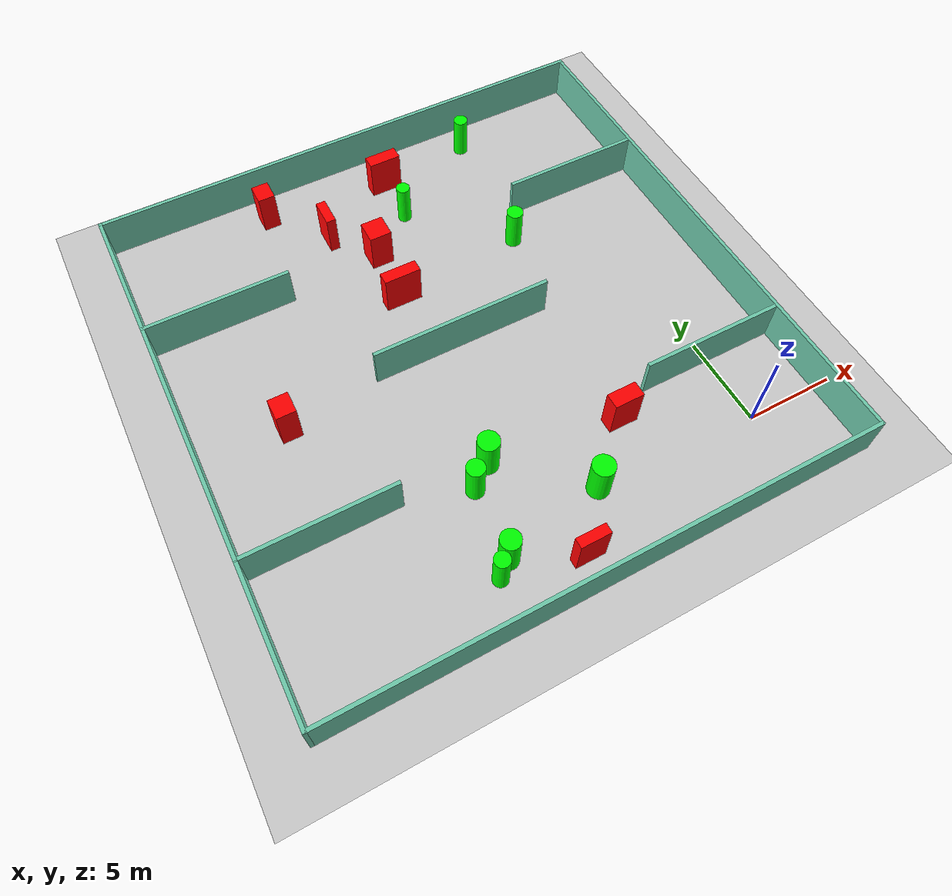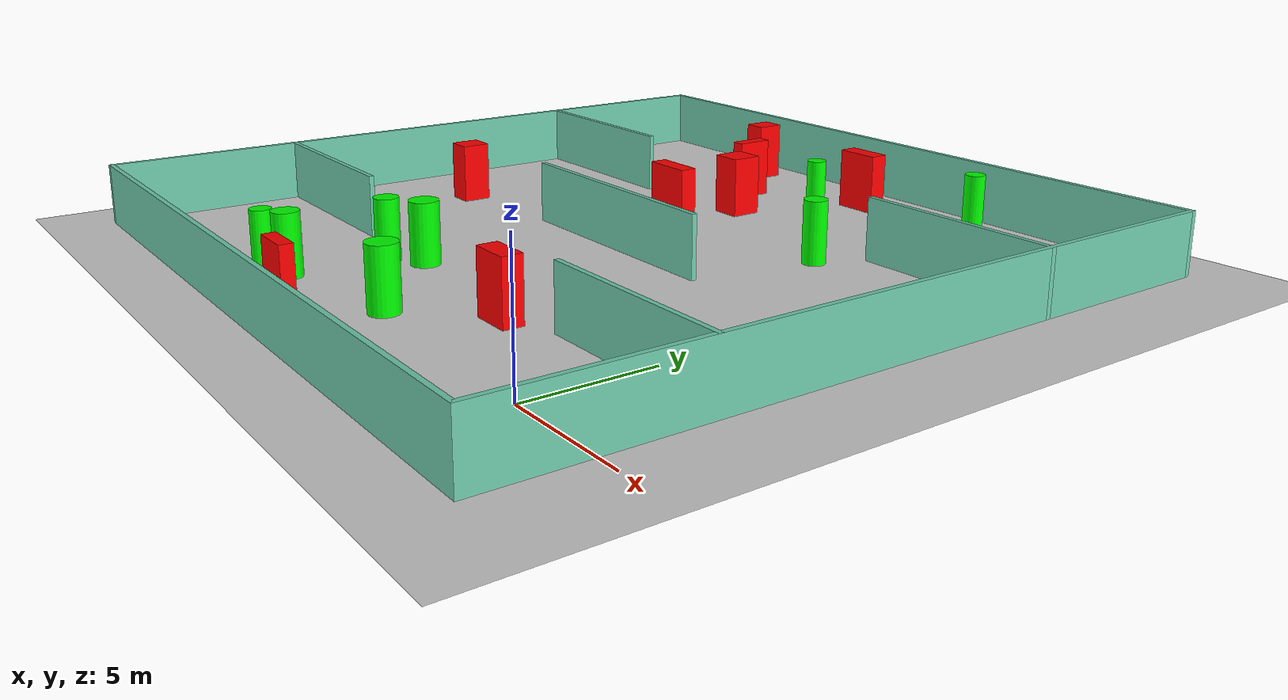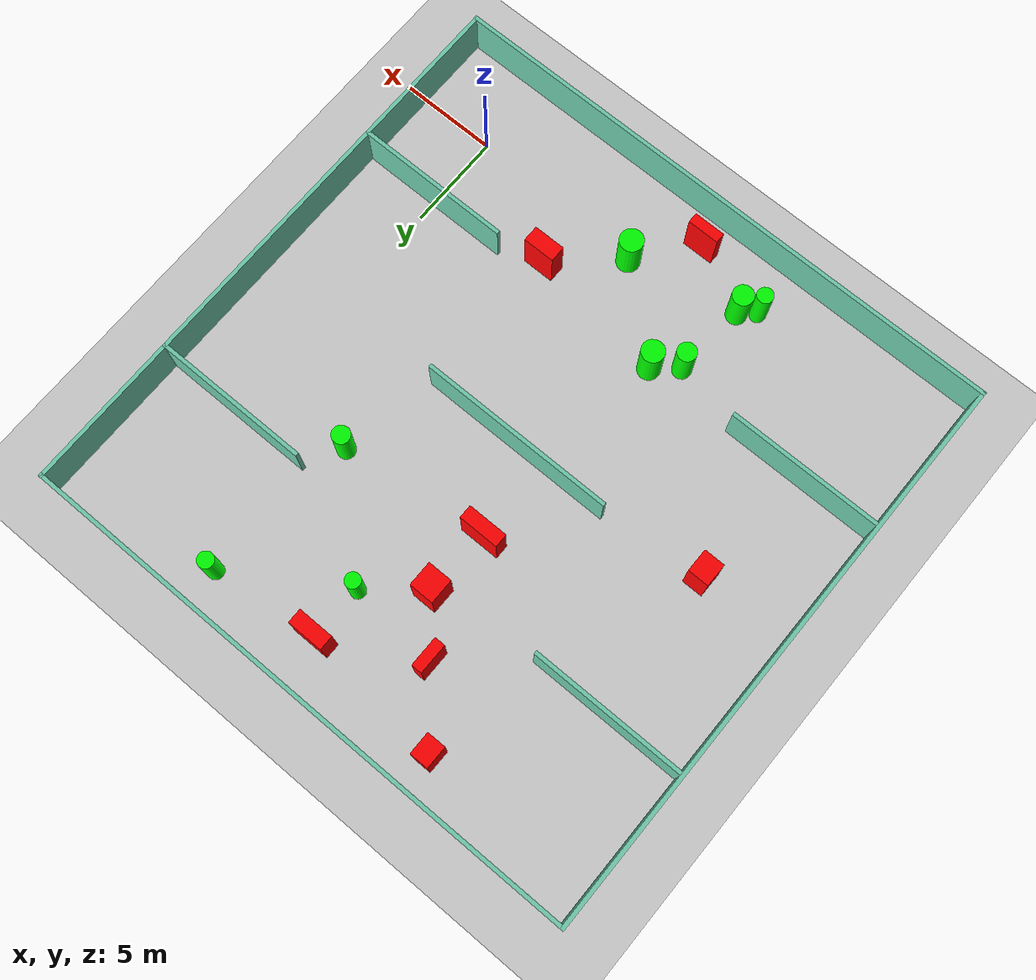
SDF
<sdf version="1.7">
 <world name="default">
  <light name="sun" type="directional">
   <pose>0 0 10 0 -0 0</pose>
   <diffuse>0.8 0.8 0.8 1</diffuse>
   <specular>0.2 0.2 0.2 1</specular>
   <attenuation>
    <range>1000</range>
    <constant>0.9</constant>
    <linear>0.01</linear>
    <quadratic>0.001</quadratic>
   </attenuation>
   <direction>-0.5 0.1 -0.9</direction>
   <spot><inner_angle>0</inner_angle><outer_angle>0</outer_angle><falloff>0</falloff></spot>
  </light>
  <model name="ground_plane">
   <static>1</static>
   <link name="link">
    <collision name="collision">
     <geometry><plane><normal>0 0 1</normal><size>100 100</size></plane></geometry>
     <surface>
      <contact><collide_bitmask>65535</collide_bitmask></contact>
      <friction><ode><mu>100</mu><mu2>50</mu2></ode></friction>
     </surface>
    </collision>
    <visual name="visual">
     <cast_shadows>0</cast_shadows>
     <geometry><plane><normal>0 0 1</normal><size>100 100</size></plane></geometry>
     <material>
      <script><uri>file://media/materials/scripts/gazebo.material</uri><name>Gazebo/Grey</name></script>
     </material>
    </visual>
   </link>
  </model>
  <gravity>0 0 -9.8</gravity>
  <magnetic_field>6e-06 2.3e-05 -4.2e-05</magnetic_field>
  <atmosphere type="adiabatic"/>
  <physics type="ode">
   <max_step_size>0.001</max_step_size>
   <real_time_factor>1</real_time_factor>
   <real_time_update_rate>1000</real_time_update_rate>
  </physics>
  <scene><ambient>0.4 0.4 0.4 1</ambient><background>0.7 0.7 0.7 1</background><shadows>1</shadows></scene>
  <spherical_coordinates>
   <surface_model>EARTH_WGS84</surface_model>
   <latitude_deg>0</latitude_deg>
   <longitude_deg>0</longitude_deg>
   <elevation>0</elevation>
   <heading_deg>0</heading_deg>
  </spherical_coordinates>
  <model name="my_base_walls">
   <link name="Wall_10">
    <collision name="Wall_10_Collision">
     <geometry><box><size>8.2 0.2 2.5</size></box></geometry>
     <pose>0 0 1.25 0 -0 0</pose>
    </collision>
    <visual name="Wall_10_Visual">
     <pose>0 0 1.25 0 -0 0</pose>
     <geometry><box><size>8.2 0.2 2.5</size></box></geometry>
     <material>
      <script><uri>file://media/materials/scripts/gazebo.material</uri><name>Gazebo/Grey</name></script>
      <ambient>0.435294 0.796078 0.67451 1</ambient>
     </material>
     <meta><layer>0</layer></meta>
    </visual>
    <pose>-11 -7 0 0 -0 0</pose>
   </link>
   <link name="Wall_12">
    <collision name="Wall_12_Collision">
     <geometry><box><size>8.2 0.2 2.5</size></box></geometry>
     <pose>0 0 1.25 0 -0 0</pose>
    </collision>
    <visual name="Wall_12_Visual">
     <pose>0 0 1.25 0 -0 0</pose>
     <geometry><box><size>8.2 0.2 2.5</size></box></geometry>
     <material>
      <script><uri>file://media/materials/scripts/gazebo.material</uri><name>Gazebo/Grey</name></script>
      <ambient>0.435294 0.796078 0.67451 1</ambient>
     </material>
     <meta><layer>0</layer></meta>
    </visual>
    <pose>-11 7 0 0 -0 0</pose>
   </link>
   <link name="Wall_14">
    <collision name="Wall_14_Collision">
     <geometry><box><size>8.2 0.2 2.5</size></box></geometry>
     <pose>0 0 1.25 0 -0 0</pose>
    </collision>
    <visual name="Wall_14_Visual">
     <pose>0 0 1.25 0 -0 0</pose>
     <geometry><box><size>8.2 0.2 2.5</size></box></geometry>
     <material>
      <script><uri>file://media/materials/scripts/gazebo.material</uri><name>Gazebo/Grey</name></script>
      <ambient>0.435294 0.796078 0.67451 1</ambient>
     </material>
     <meta><layer>0</layer></meta>
    </visual>
    <pose>11 7 0 0 -0 3.14159</pose>
   </link>
   <link name="Wall_16">
    <collision name="Wall_16_Collision">
     <geometry><box><size>10.2 0.2 2.5</size></box></geometry>
     <pose>0 0 1.25 0 -0 0</pose>
    </collision>
    <visual name="Wall_16_Visual">
     <pose>0 0 1.25 0 -0 0</pose>
     <geometry><box><size>10.2 0.2 2.5</size></box></geometry>
     <material>
      <script><uri>file://media/materials/scripts/gazebo.material</uri><name>Gazebo/Grey</name></script>
      <ambient>0.435294 0.796078 0.67451 1</ambient>
     </material>
     <meta><layer>0</layer></meta>
    </visual>
    <pose>0 0 0 0 -0 3.14159</pose>
   </link>
   <link name="Wall_2">
    <collision name="Wall_2_Collision">
     <geometry><box><size>30.2 0.2 2.5</size></box></geometry>
     <pose>0 0 1.25 0 -0 0</pose>
    </collision>
    <visual name="Wall_2_Visual">
     <pose>0 0 1.25 0 -0 0</pose>
     <geometry><box><size>30.2 0.2 2.5</size></box></geometry>
     <material>
      <script><uri>file://media/materials/scripts/gazebo.material</uri><name>Gazebo/Grey</name></script>
      <ambient>0.435294 0.796078 0.67451 1</ambient>
     </material>
     <meta><layer>0</layer></meta>
    </visual>
    <pose>0 -15 0 0 -0 3.14159</pose>
   </link>
   <link name="Wall_3">
    <collision name="Wall_3_Collision">
     <geometry><box><size>30.2 0.2 2.5</size></box></geometry>
     <pose>0 0 1.25 0 -0 0</pose>
    </collision>
    <visual name="Wall_3_Visual">
     <pose>0 0 1.25 0 -0 0</pose>
     <geometry><box><size>30.2 0.2 2.5</size></box></geometry>
     <material>
      <script><uri>file://media/materials/scripts/gazebo.material</uri><name>Gazebo/Grey</name></script>
      <ambient>0.435294 0.796078 0.67451 1</ambient>
     </material>
     <meta><layer>0</layer></meta>
    </visual>
    <pose>-15 0 0 0 -0 1.5708</pose>
   </link>
   <link name="Wall_4">
    <collision name="Wall_4_Collision">
     <geometry><box><size>30.2 0.2 2.5</size></box></geometry>
     <pose>0 0 1.25 0 -0 0</pose>
    </collision>
    <visual name="Wall_4_Visual">
     <pose>0 0 1.25 0 -0 0</pose>
     <geometry><box><size>30.2 0.2 2.5</size></box></geometry>
     <material>
      <script><uri>file://media/materials/scripts/gazebo.material</uri><name>Gazebo/Grey</name></script>
      <ambient>0.435294 0.796078 0.67451 1</ambient>
     </material>
     <meta><layer>0</layer></meta>
    </visual>
    <pose>0 15 0 0 -0 0</pose>
   </link>
   <link name="Wall_6">
    <collision name="Wall_6_Collision">
     <geometry><box><size>30.2 0.2 2.5</size></box></geometry>
     <pose>0 0 1.25 0 -0 0</pose>
    </collision>
    <visual name="Wall_6_Visual">
     <pose>0 0 1.25 0 -0 0</pose>
     <geometry><box><size>30.2 0.2 2.5</size></box></geometry>
     <material>
      <script><uri>file://media/materials/scripts/gazebo.material</uri><name>Gazebo/Grey</name></script>
      <ambient>0.435294 0.796078 0.67451 1</ambient>
     </material>
     <meta><layer>0</layer></meta>
    </visual>
    <pose>15 0 0 0 -0 1.5708</pose>
   </link>
   <link name="Wall_8">
    <collision name="Wall_8_Collision">
     <geometry><box><size>8.2 0.2 2.5</size></box></geometry>
     <pose>0 0 1.25 0 -0 0</pose>
    </collision>
    <visual name="Wall_8_Visual">
     <pose>0 0 1.25 0 -0 0</pose>
     <geometry><box><size>8.2 0.2 2.5</size></box></geometry>
     <material>
      <script><uri>file://media/materials/scripts/gazebo.material</uri><name>Gazebo/Grey</name></script>
      <ambient>0.435294 0.796078 0.67451 1</ambient>
     </material>
     <meta><layer>0</layer></meta>
    </visual>
    <pose>11 -7 0 0 -0 3.14159</pose>
   </link>
   <static>1</static>
   <pose>-11 11 0 0 -0 0</pose>
  </model>
  <model name="cylinder1">
   <static>1</static>
   <link name="link">
    <inertial>
     <mass>1</mass>
     <inertia><ixx>0.5</ixx><ixy>0</ixy><ixz>0</ixz><iyy>0.5</iyy><iyz>0</iyz><izz>1</izz></inertia>
    </inertial>
    <collision name="collision">
     <geometry><cylinder><radius>0.41397197853040407</radius><length>2.5</length></cylinder></geometry>
    </collision>
    <visual name="visual">
     <geometry><cylinder><radius>0.41397197853040407</radius><length>2.5</length></cylinder></geometry>
     <material>
      <ambient>0 1 0 1</ambient>
      <diffuse>0 1 0 1</diffuse>
      <specular>0.1 0.1 0.1 1</specular>
      <emissive>0 0 0 0</emissive>
     </material>
    </visual>
   </link>
   <pose>-15.558558438686347 -1.4594282671831191 1.25 0 0 0</pose>
  </model>
  <model name="cylinder2">
   <static>1</static>
   <link name="link">
    <inertial>
     <mass>1</mass>
     <inertia><ixx>0.5</ixx><ixy>0</ixy><ixz>0</ixz><iyy>0.5</iyy><iyz>0</iyz><izz>1</izz></inertia>
    </inertial>
    <collision name="collision">
     <geometry><cylinder><radius>0.6008771401062143</radius><length>2.5</length></cylinder></geometry>
    </collision>
    <visual name="visual">
     <geometry><cylinder><radius>0.6008771401062143</radius><length>2.5</length></cylinder></geometry>
     <material>
      <ambient>0 1 0 1</ambient>
      <diffuse>0 1 0 1</diffuse>
      <specular>0.1 0.1 0.1 1</specular>
      <emissive>0 0 0 0</emissive>
     </material>
    </visual>
   </link>
   <pose>-9.10909836645408 0.32474747618404987 1.25 0 0 0</pose>
  </model>
  <model name="cylinder3">
   <static>1</static>
   <link name="link">
    <inertial>
     <mass>1</mass>
     <inertia><ixx>0.5</ixx><ixy>0</ixy><ixz>0</ixz><iyy>0.5</iyy><iyz>0</iyz><izz>1</izz></inertia>
    </inertial>
    <collision name="collision">
     <geometry><cylinder><radius>0.38977629832175514</radius><length>2.5</length></cylinder></geometry>
    </collision>
    <visual name="visual">
     <geometry><cylinder><radius>0.38977629832175514</radius><length>2.5</length></cylinder></geometry>
     <material>
      <ambient>0 1 0 1</ambient>
      <diffuse>0 1 0 1</diffuse>
      <specular>0.1 0.1 0.1 1</specular>
      <emissive>0 0 0 0</emissive>
     </material>
    </visual>
   </link>
   <pose>-9.789465030495073 20.679294446137707 1.25 0 0 0</pose>
  </model>
  <model name="cylinder4">
   <static>1</static>
   <link name="link">
    <inertial>
     <mass>1</mass>
     <inertia><ixx>0.5</ixx><ixy>0</ixy><ixz>0</ixz><iyy>0.5</iyy><iyz>0</iyz><izz>1</izz></inertia>
    </inertial>
    <collision name="collision">
     <geometry><cylinder><radius>0.5804065066717381</radius><length>2.5</length></cylinder></geometry>
    </collision>
    <visual name="visual">
     <geometry><cylinder><radius>0.5804065066717381</radius><length>2.5</length></cylinder></geometry>
     <material>
      <ambient>0 1 0 1</ambient>
      <diffuse>0 1 0 1</diffuse>
      <specular>0.1 0.1 0.1 1</specular>
      <emissive>0 0 0 0</emissive>
     </material>
    </visual>
   </link>
   <pose>-13.275286865259798 3.9784817281924134 1.25 0 0 0</pose>
  </model>
  <model name="cylinder5">
   <static>1</static>
   <link name="link">
    <inertial>
     <mass>1</mass>
     <inertia><ixx>0.5</ixx><ixy>0</ixy><ixz>0</ixz><iyy>0.5</iyy><iyz>0</iyz><izz>1</izz></inertia>
    </inertial>
    <collision name="collision">
     <geometry><cylinder><radius>0.5337642251931196</radius><length>2.5</length></cylinder></geometry>
    </collision>
    <visual name="visual">
     <geometry><cylinder><radius>0.5337642251931196</radius><length>2.5</length></cylinder></geometry>
     <material>
      <ambient>0 1 0 1</ambient>
      <diffuse>0 1 0 1</diffuse>
      <specular>0.1 0.1 0.1 1</specular>
      <emissive>0 0 0 0</emissive>
     </material>
    </visual>
   </link>
   <pose>-14.77453670664763 -0.8176357009155852 1.25 0 0 0</pose>
  </model>
  <model name="cylinder6">
   <static>1</static>
   <link name="link">
    <inertial>
     <mass>1</mass>
     <inertia><ixx>0.5</ixx><ixy>0</ixy><ixz>0</ixz><iyy>0.5</iyy><iyz>0</iyz><izz>1</izz></inertia>
    </inertial>
    <collision name="collision">
     <geometry><cylinder><radius>0.46039299668702194</radius><length>2.5</length></cylinder></geometry>
    </collision>
    <visual name="visual">
     <geometry><cylinder><radius>0.46039299668702194</radius><length>2.5</length></cylinder></geometry>
     <material>
      <ambient>0 1 0 1</ambient>
      <diffuse>0 1 0 1</diffuse>
      <specular>0.1 0.1 0.1 1</specular>
      <emissive>0 0 0 0</emissive>
     </material>
    </visual>
   </link>
   <pose>-4.989903117781374 16.053580785866547 1.25 0 0 0</pose>
  </model>
  <model name="cylinder7">
   <static>1</static>
   <link name="link">
    <inertial>
     <mass>1</mass>
     <inertia><ixx>0.5</ixx><ixy>0</ixy><ixz>0</ixz><iyy>0.5</iyy><iyz>0</iyz><izz>1</izz></inertia>
    </inertial>
    <collision name="collision">
     <geometry><cylinder><radius>0.4880701734393501</radius><length>2.5</length></cylinder></geometry>
    </collision>
    <visual name="visual">
     <geometry><cylinder><radius>0.4880701734393501</radius><length>2.5</length></cylinder></geometry>
     <material>
      <ambient>0 1 0 1</ambient>
      <diffuse>0 1 0 1</diffuse>
      <specular>0.1 0.1 0.1 1</specular>
      <emissive>0 0 0 0</emissive>
     </material>
    </visual>
   </link>
   <pose>-14.48891790224198 3.020065821737144 1.25 0 0 0</pose>
  </model>
  <model name="cylinder8">
   <static>1</static>
   <link name="link">
    <inertial>
     <mass>1</mass>
     <inertia><ixx>0.5</ixx><ixy>0</ixy><ixz>0</ixz><iyy>0.5</iyy><iyz>0</iyz><izz>1</izz></inertia>
    </inertial>
    <collision name="collision">
     <geometry><cylinder><radius>0.4097630967198054</radius><length>2.5</length></cylinder></geometry>
    </collision>
    <visual name="visual">
     <geometry><cylinder><radius>0.4097630967198054</radius><length>2.5</length></cylinder></geometry>
     <material>
      <ambient>0 1 0 1</ambient>
      <diffuse>0 1 0 1</diffuse>
      <specular>0.1 0.1 0.1 1</specular>
      <emissive>0 0 0 0</emissive>
     </material>
    </visual>
   </link>
   <pose>-4.2371191528825225 24.1203119494979 1.25 0 0 0</pose>
  </model>
  <model name="box1">
   <static>1</static>
   <link name="link">
    <inertial>
     <mass>1</mass>
     <inertia><ixx>0.083</ixx><ixy>0</ixy><ixz>0</ixz><iyy>0.083</iyy><iyz>0</iyz><izz>0.083</izz></inertia>
    </inertial>
    <collision name="collision">
     <geometry><box><size>1.269036779558419 1.2964885183979187 2.5</size></box></geometry>
    </collision>
    <visual name="visual">
     <geometry><box><size>1.269036779558419 1.2964885183979187 2.5</size></box></geometry>
     <material>
      <ambient>1 0 0 1</ambient>
      <diffuse>1 0 0 1</diffuse>
      <specular>0.1 0.1 0.1 1</specular>
      <emissive>0 0 0 0</emissive>
     </material>
    </visual>
    <sensor name="my_contact" type="contact">
     <contact><collision>box_collision</collision><topic>__default_topic__</topic></contact>
    </sensor>
   </link>
   <pose>-12.459664569240958 18.57852388925275 1.25 0 0 0</pose>
  </model>
  <model name="box2">
   <static>1</static>
   <link name="link">
    <inertial>
     <mass>1</mass>
     <inertia><ixx>0.083</ixx><ixy>0</ixy><ixz>0</ixz><iyy>0.083</iyy><iyz>0</iyz><izz>0.083</izz></inertia>
    </inertial>
    <collision name="collision">
     <geometry><box><size>1.861275143814002 0.7626525483013606 2.5</size></box></geometry>
    </collision>
    <visual name="visual">
     <geometry><box><size>1.861275143814002 0.7626525483013606 2.5</size></box></geometry>
     <material>
      <ambient>1 0 0 1</ambient>
      <diffuse>1 0 0 1</diffuse>
      <specular>0.1 0.1 0.1 1</specular>
      <emissive>0 0 0 0</emissive>
     </material>
    </visual>
    <sensor name="my_contact" type="contact">
     <contact><collision>box_collision</collision><topic>__default_topic__</topic></contact>
    </sensor>
   </link>
   <pose>-9.799999987121119 23.465470850470428 1.25 0 0 0</pose>
  </model>
  <model name="box3">
   <static>1</static>
   <link name="link">
    <inertial>
     <mass>1</mass>
     <inertia><ixx>0.083</ixx><ixy>0</ixy><ixz>0</ixz><iyy>0.083</iyy><iyz>0</iyz><izz>0.083</izz></inertia>
    </inertial>
    <collision name="collision">
     <geometry><box><size>1.082993072958795 1.1987815290744925 2.5</size></box></geometry>
    </collision>
    <visual name="visual">
     <geometry><box><size>1.082993072958795 1.1987815290744925 2.5</size></box></geometry>
     <material>
      <ambient>1 0 0 1</ambient>
      <diffuse>1 0 0 1</diffuse>
      <specular>0.1 0.1 0.1 1</specular>
      <emissive>0 0 0 0</emissive>
     </material>
    </visual>
    <sensor name="my_contact" type="contact">
     <contact><collision>box_collision</collision><topic>__default_topic__</topic></contact>
    </sensor>
   </link>
   <pose>-21.29693637344708 10.362773991541363 1.25 0 0 0</pose>
  </model>
  <model name="box4">
   <static>1</static>
   <link name="link">
    <inertial>
     <mass>1</mass>
     <inertia><ixx>0.083</ixx><ixy>0</ixy><ixz>0</ixz><iyy>0.083</iyy><iyz>0</iyz><izz>0.083</izz></inertia>
    </inertial>
    <collision name="collision">
     <geometry><box><size>1.6463124204164934 0.829431145418327 2.5</size></box></geometry>
    </collision>
    <visual name="visual">
     <geometry><box><size>1.6463124204164934 0.829431145418327 2.5</size></box></geometry>
     <material>
      <ambient>1 0 0 1</ambient>
      <diffuse>1 0 0 1</diffuse>
      <specular>0.1 0.1 0.1 1</specular>
      <emissive>0 0 0 0</emissive>
     </material>
    </visual>
    <sensor name="my_contact" type="contact">
     <contact><collision>box_collision</collision><topic>__default_topic__</topic></contact>
    </sensor>
   </link>
   <pose>-6.089981064069052 3.0768302632725435 1.25 0 0 0</pose>
  </model>
  <model name="box5">
   <static>1</static>
   <link name="link">
    <inertial>
     <mass>1</mass>
     <inertia><ixx>0.083</ixx><ixy>0</ixy><ixz>0</ixz><iyy>0.083</iyy><iyz>0</iyz><izz>0.083</izz></inertia>
    </inertial>
    <collision name="collision">
     <geometry><box><size>1.6408782464008158 0.5326670883688255 2.5</size></box></geometry>
    </collision>
    <visual name="visual">
     <geometry><box><size>1.6408782464008158 0.5326670883688255 2.5</size></box></geometry>
     <material>
      <ambient>1 0 0 1</ambient>
      <diffuse>1 0 0 1</diffuse>
      <specular>0.1 0.1 0.1 1</specular>
      <emissive>0 0 0 0</emissive>
     </material>
    </visual>
    <sensor name="my_contact" type="contact">
     <contact><collision>box_collision</collision><topic>__default_topic__</topic></contact>
    </sensor>
   </link>
   <pose>-11.400202942002618 -2.390235980511436 1.25 0 0 0</pose>
  </model>
  <model name="box6">
   <static>1</static>
   <link name="link">
    <inertial>
     <mass>1</mass>
     <inertia><ixx>0.083</ixx><ixy>0</ixy><ixz>0</ixz><iyy>0.083</iyy><iyz>0</iyz><izz>0.083</izz></inertia>
    </inertial>
    <collision name="collision">
     <geometry><box><size>2.0763947614809153 0.6978486400955684 2.5</size></box></geometry>
    </collision>
    <visual name="visual">
     <geometry><box><size>2.0763947614809153 0.6978486400955684 2.5</size></box></geometry>
     <material>
      <ambient>1 0 0 1</ambient>
      <diffuse>1 0 0 1</diffuse>
      <specular>0.1 0.1 0.1 1</specular>
      <emissive>0 0 0 0</emissive>
     </material>
    </visual>
    <sensor name="my_contact" type="contact">
     <contact><collision>box_collision</collision><topic>__default_topic__</topic></contact>
    </sensor>
   </link>
   <pose>-12.58892405273183 15.185260689762739 1.25 0 0 0</pose>
  </model>
  <model name="box7">
   <static>1</static>
   <link name="link">
    <inertial>
     <mass>1</mass>
     <inertia><ixx>0.083</ixx><ixy>0</ixy><ixz>0</ixz><iyy>0.083</iyy><iyz>0</iyz><izz>0.083</izz></inertia>
    </inertial>
    <collision name="collision">
     <geometry><box><size>0.9712053079361089 1.1717958512429942 2.5</size></box></geometry>
    </collision>
    <visual name="visual">
     <geometry><box><size>0.9712053079361089 1.1717958512429942 2.5</size></box></geometry>
     <material>
      <ambient>1 0 0 1</ambient>
      <diffuse>1 0 0 1</diffuse>
      <specular>0.1 0.1 0.1 1</specular>
      <emissive>0 0 0 0</emissive>
     </material>
    </visual>
    <sensor name="my_contact" type="contact">
     <contact><collision>box_collision</collision><topic>__default_topic__</topic></contact>
    </sensor>
   </link>
   <pose>-17.054345583818574 24.119306706829768 1.25 0 0 0</pose>
  </model>
  <model name="box8">
   <static>1</static>
   <link name="link">
    <inertial>
     <mass>1</mass>
     <inertia><ixx>0.083</ixx><ixy>0</ixy><ixz>0</ixz><iyy>0.083</iyy><iyz>0</iyz><izz>0.083</izz></inertia>
    </inertial>
    <collision name="collision">
     <geometry><box><size>0.5471239119600172 1.5629220528433265 2.5</size></box></geometry>
    </collision>
    <visual name="visual">
     <geometry><box><size>0.5471239119600172 1.5629220528433265 2.5</size></box></geometry>
     <material>
      <ambient>1 0 0 1</ambient>
      <diffuse>1 0 0 1</diffuse>
      <specular>0.1 0.1 0.1 1</specular>
      <emissive>0 0 0 0</emissive>
     </material>
    </visual>
    <sensor name="my_contact" type="contact">
     <contact><collision>box_collision</collision><topic>__default_topic__</topic></contact>
    </sensor>
   </link>
   <pose>-14.450639891232303 21.0466480430944 1.25 0 0 0</pose>
  </model>
 </world>
</sdf>
